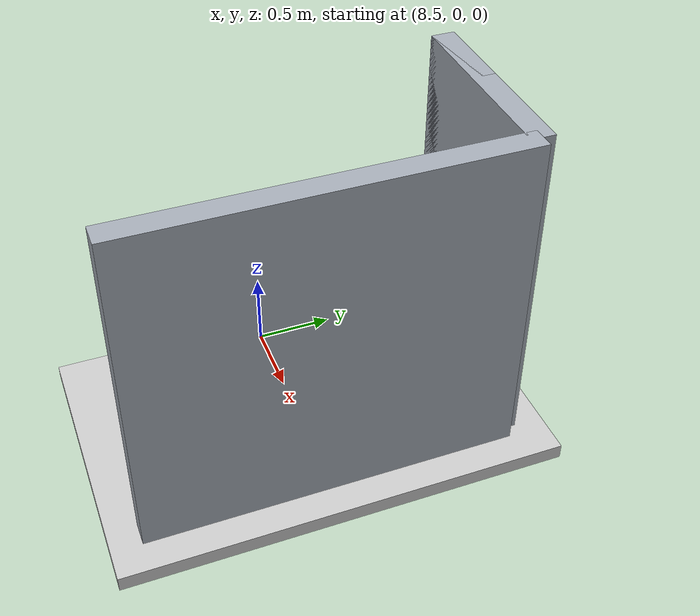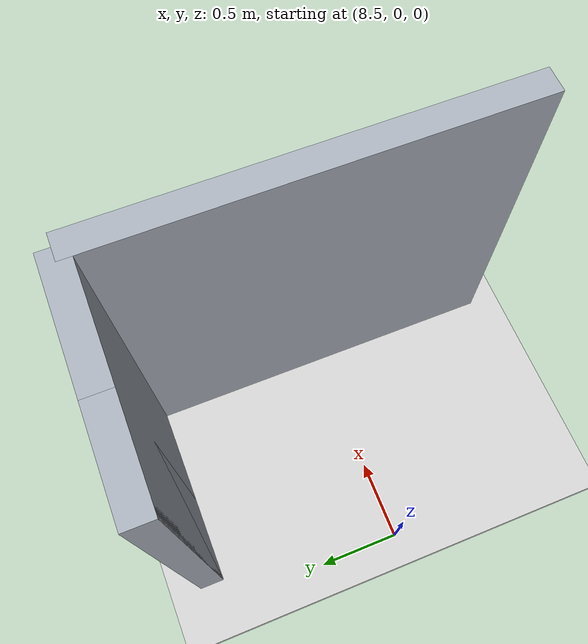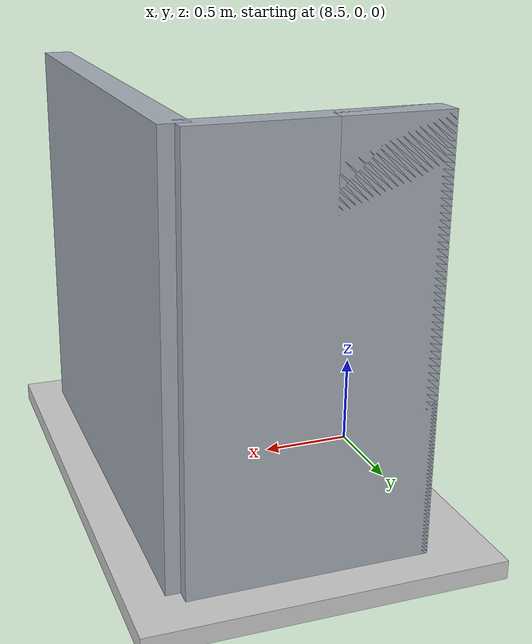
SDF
<sdf version="1.9">
 <world name="default">
  <model name="ground_plane">
   <static>true</static>
   <pose>4.95 0 -0.05 0 0 0</pose>
   <link name="body">
    <collision name="collision"><geometry><box><size>13.9 12 0.1</size></box></geometry></collision>
    <visual name="visual">
     <geometry><box><size>13.9 12 0.1</size></box></geometry>
     <material><ambient>0.8 0.8 0.8 1</ambient><diffuse>0.8 0.8 0.8 1</diffuse></material>
    </visual>
   </link>
  </model>
  <model name="end_wall">
   <static>true</static>
   <pose>9.9 0 1.1 0 0 0</pose>
   <link name="body">
    <collision name="collision"><geometry><box><size>0.15 2.4 2.2</size></box></geometry></collision>
    <visual name="visual">
     <geometry><box><size>0.15 2.4 2.2</size></box></geometry>
     <material><ambient>0.65 0.68 0.72 1</ambient><diffuse>0.65 0.68 0.72 1</diffuse></material>
    </visual>
   </link>
  </model>
  <model name="jamb_1_2_1">
   <static>true</static>
   <pose>8.925 1.2 1.1 0 0 0</pose>
   <link name="body">
    <collision name="collision"><geometry><box><size>0.55 0.15 2.2</size></box></geometry></collision>
    <visual name="visual">
     <geometry><box><size>0.55 0.15 2.2</size></box></geometry>
     <material><ambient>0.65 0.68 0.72 1</ambient><diffuse>0.65 0.68 0.72 1</diffuse></material>
    </visual>
   </link>
  </model>
  <model name="hall_end_1">
   <static>true</static>
   <pose>9.275 1.2 1.1 0 0 0</pose>
   <link name="body">
    <collision name="collision"><geometry><box><size>1.25 0.15 2.2</size></box></geometry></collision>
    <visual name="visual">
     <geometry><box><size>1.25 0.15 2.2</size></box></geometry>
     <material><ambient>0.65 0.68 0.72 1</ambient><diffuse>0.65 0.68 0.72 1</diffuse></material>
    </visual>
   </link>
  </model>
 </world>
</sdf>
